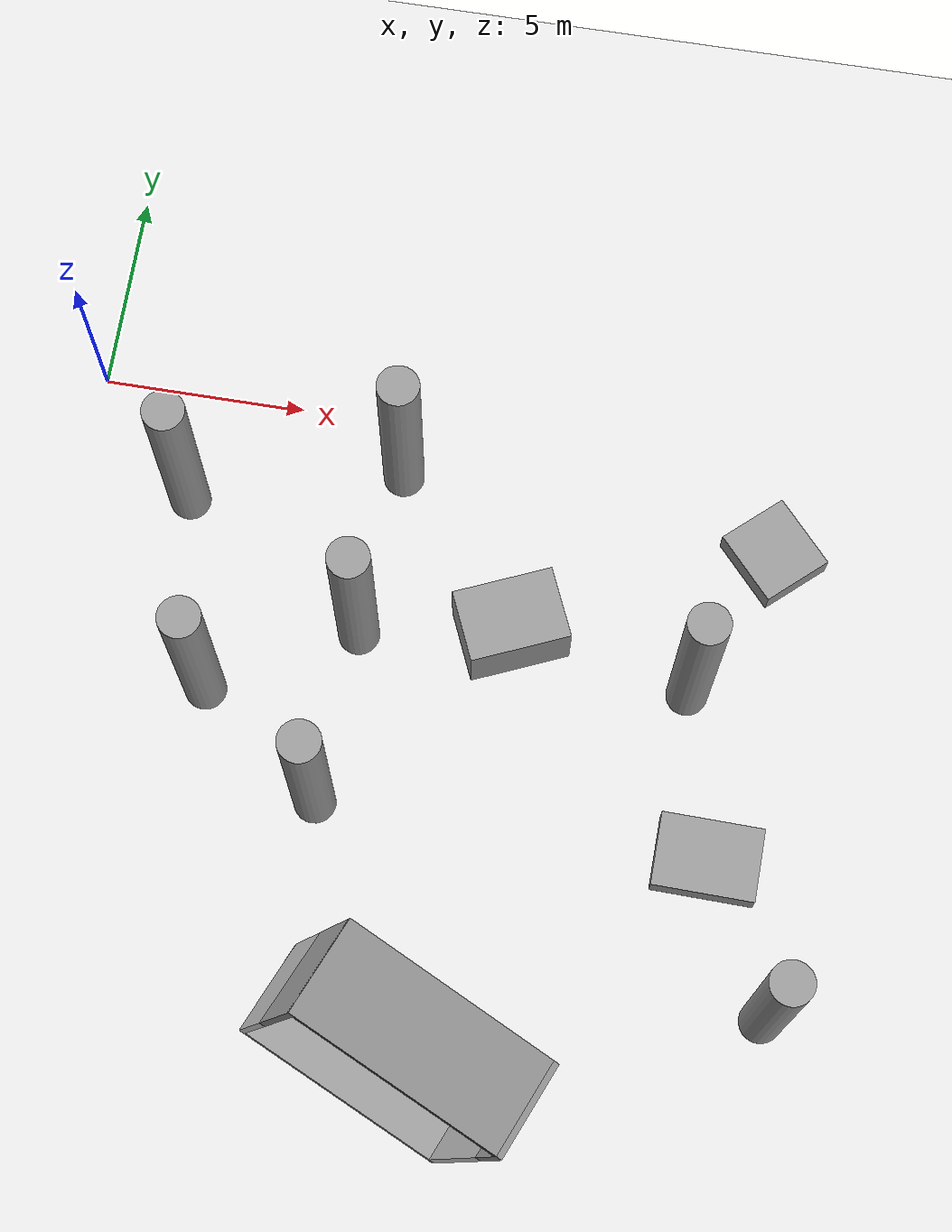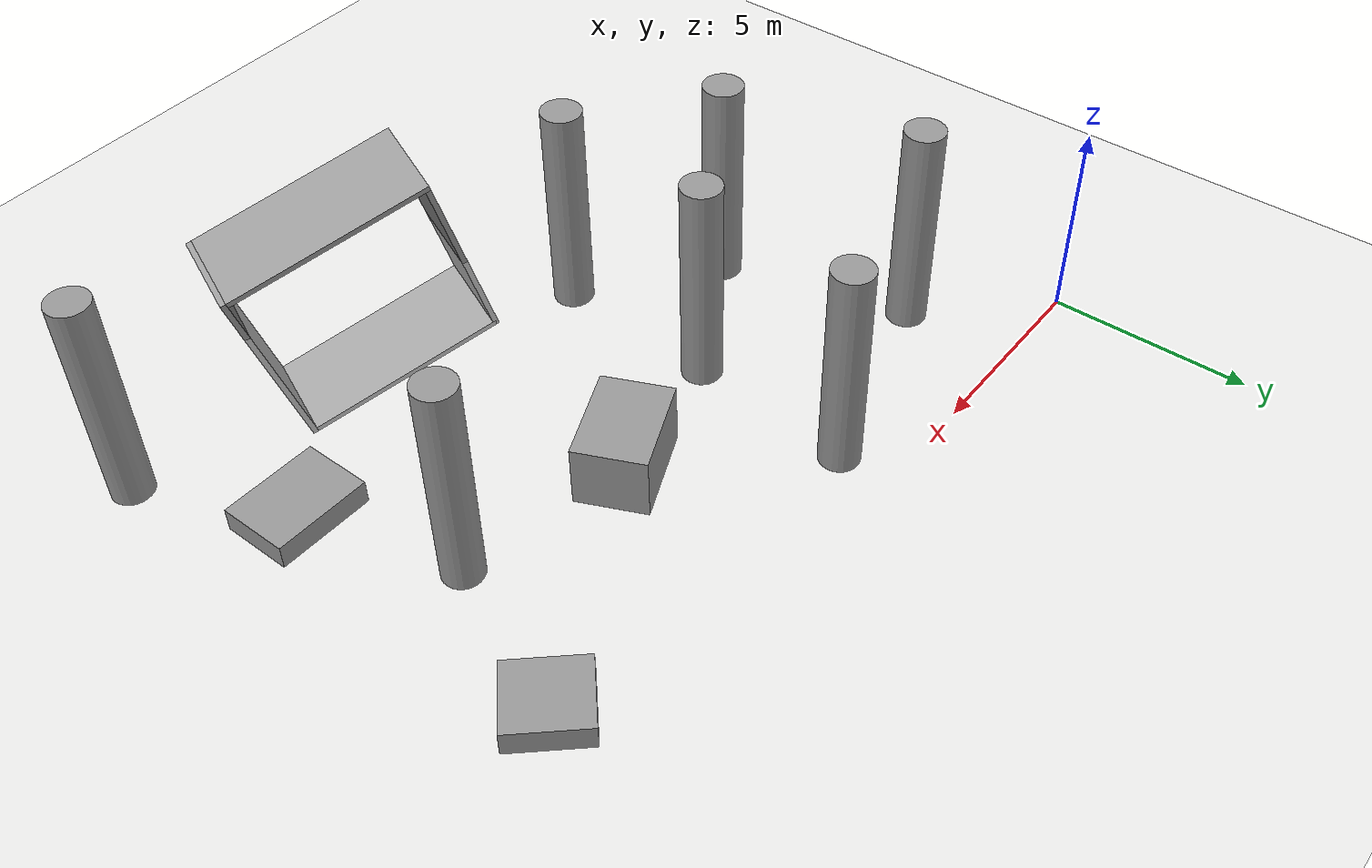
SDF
<sdf version="1.6">
 <world name="default">
  <model name="ground_plane">
   <static>1</static>
   <link name="link">
    <collision name="collision">
     <geometry><plane><normal>0 0 1</normal><size>100 100</size></plane></geometry>
     <surface><friction><ode><mu>100</mu><mu2>50</mu2></ode></friction></surface>
    </collision>
    <visual name="visual">
     <cast_shadows>0</cast_shadows>
     <geometry><plane><normal>0 0 1</normal><size>100 100</size></plane></geometry>
     <material>
      <script><uri>file://media/materials/scripts/gazebo.material</uri><name>Gazebo/Grey</name></script>
     </material>
    </visual>
   </link>
  </model>
  <model name="unit_cylinder_clone">
   <pose>2.682 -2.80486 2.75253 0 -0 0.001928</pose>
   <link name="link">
    <inertial>
     <mass>1</mass>
     <inertia><ixx>0.145833</ixx><ixy>0</ixy><ixz>0</ixz><iyy>0.145833</iyy><iyz>0</iyz><izz>0.125</izz></inertia>
    </inertial>
    <collision name="collision">
     <geometry><cylinder><radius>0.5</radius><length>5.50507</length></cylinder></geometry>
    </collision>
    <visual name="visual">
     <geometry><cylinder><radius>0.5</radius><length>5.50507</length></cylinder></geometry>
     <material>
      <script><name>Gazebo/Grey</name><uri>file://media/materials/scripts/gazebo.material</uri></script>
     </material>
    </visual>
   </link>
  </model>
  <model name="unit_cylinder_clone_1">
   <pose>7.38604 -5.59568 2.75253 0 -0 0.001783</pose>
   <link name="link">
    <inertial>
     <mass>1</mass>
     <inertia><ixx>0.145833</ixx><ixy>0</ixy><ixz>0</ixz><iyy>0.145833</iyy><iyz>0</iyz><izz>0.125</izz></inertia>
    </inertial>
    <collision name="collision">
     <geometry><cylinder><radius>0.5</radius><length>5.50507</length></cylinder></geometry>
    </collision>
    <visual name="visual">
     <geometry><cylinder><radius>0.5</radius><length>5.50507</length></cylinder></geometry>
     <material>
      <script><name>Gazebo/Grey</name><uri>file://media/materials/scripts/gazebo.material</uri></script>
     </material>
    </visual>
   </link>
  </model>
  <model name="unit_cylinder_clone_3">
   <pose>7.77998 -1.3796 2.75253 0 -0 0.002173</pose>
   <link name="link">
    <inertial>
     <mass>1</mass>
     <inertia><ixx>0.145833</ixx><ixy>0</ixy><ixz>0</ixz><iyy>0.145833</iyy><iyz>0</iyz><izz>0.125</izz></inertia>
    </inertial>
    <collision name="collision">
     <geometry><cylinder><radius>0.5</radius><length>5.50507</length></cylinder></geometry>
    </collision>
    <visual name="visual">
     <geometry><cylinder><radius>0.5</radius><length>5.50507</length></cylinder></geometry>
     <material>
      <script><name>Gazebo/Grey</name><uri>file://media/materials/scripts/gazebo.material</uri></script>
     </material>
    </visual>
   </link>
  </model>
  <model name="unit_cylinder_clone_4">
   <pose>3.9885 -7.5392 2.75253 0 -0 0.002246</pose>
   <link name="link">
    <inertial>
     <mass>1</mass>
     <inertia><ixx>0.145833</ixx><ixy>0</ixy><ixz>0</ixz><iyy>0.145833</iyy><iyz>0</iyz><izz>0.125</izz></inertia>
    </inertial>
    <collision name="collision">
     <geometry><cylinder><radius>0.5</radius><length>5.50507</length></cylinder></geometry>
    </collision>
    <visual name="visual">
     <geometry><cylinder><radius>0.5</radius><length>5.50507</length></cylinder></geometry>
     <material>
      <script><name>Gazebo/Grey</name><uri>file://media/materials/scripts/gazebo.material</uri></script>
     </material>
    </visual>
   </link>
  </model>
  <model name="unit_cylinder_clone_6">
   <pose>7.07562 -9.88009 2.75253 0 -0 0.001971</pose>
   <link name="link">
    <inertial>
     <mass>1</mass>
     <inertia><ixx>0.145833</ixx><ixy>0</ixy><ixz>0</ixz><iyy>0.145833</iyy><iyz>0</iyz><izz>0.125</izz></inertia>
    </inertial>
    <collision name="collision">
     <geometry><cylinder><radius>0.5</radius><length>5.50507</length></cylinder></geometry>
    </collision>
    <visual name="visual">
     <geometry><cylinder><radius>0.5</radius><length>5.50507</length></cylinder></geometry>
     <material>
      <script><name>Gazebo/Grey</name><uri>file://media/materials/scripts/gazebo.material</uri></script>
     </material>
    </visual>
   </link>
  </model>
  <model name="unit_cylinder_clone_12">
   <pose>15.4144 -5.85672 2.75253 0 -0 0.002175</pose>
   <link name="link">
    <inertial>
     <mass>1</mass>
     <inertia><ixx>0.145833</ixx><ixy>0</ixy><ixz>0</ixz><iyy>0.145833</iyy><iyz>0</iyz><izz>0.125</izz></inertia>
    </inertial>
    <collision name="collision">
     <geometry><cylinder><radius>0.5</radius><length>5.50507</length></cylinder></geometry>
    </collision>
    <visual name="visual">
     <geometry><cylinder><radius>0.5</radius><length>5.50507</length></cylinder></geometry>
     <material>
      <script><name>Gazebo/Grey</name><uri>file://media/materials/scripts/gazebo.material</uri></script>
     </material>
    </visual>
   </link>
  </model>
  <model name="unit_box_clone">
   <pose>11.0027 -5 0.788235 0 0 -1.15764</pose>
   <link name="link">
    <inertial>
     <mass>1</mass>
     <inertia>
      <ixx>0.166667</ixx>
      <ixy>0</ixy>
      <ixz>0</ixz>
      <iyy>0.166667</iyy>
      <iyz>0</iyz>
      <izz>0.166667</izz>
     </inertia>
    </inertial>
    <collision name="collision"><geometry><box><size>1.76997 2.44518 1.57647</size></box></geometry></collision>
    <visual name="visual">
     <geometry><box><size>1.76997 2.44518 1.57647</size></box></geometry>
     <material>
      <script><name>Gazebo/Grey</name><uri>file://media/materials/scripts/gazebo.material</uri></script>
     </material>
    </visual>
   </link>
  </model>
  <model name="unit_box_clone_0">
   <pose>17.0316 -2.04216 0.311636 0 -0 0.732674</pose>
   <link name="link">
    <inertial>
     <mass>1</mass>
     <inertia>
      <ixx>0.166667</ixx>
      <ixy>0</ixy>
      <ixz>0</ixz>
      <iyy>0.166667</iyy>
      <iyz>0</iyz>
      <izz>0.166667</izz>
     </inertia>
    </inertial>
    <collision name="collision"><geometry><box><size>1.76997 1.92154 0.623272</size></box></geometry></collision>
    <visual name="visual">
     <geometry><box><size>1.76997 1.92154 0.623272</size></box></geometry>
     <material>
      <script><name>Gazebo/Grey</name><uri>file://media/materials/scripts/gazebo.material</uri></script>
     </material>
    </visual>
   </link>
  </model>
  <model name="unit_box_clone_1">
   <pose>16.398 -9.83684 0.300237 0 1.4e-05 1.55078</pose>
   <link name="link">
    <inertial>
     <mass>1</mass>
     <inertia>
      <ixx>0.166667</ixx>
      <ixy>0</ixy>
      <ixz>0</ixz>
      <iyy>0.166667</iyy>
      <iyz>0</iyz>
      <izz>0.166667</izz>
     </inertia>
    </inertial>
    <collision name="collision"><geometry><box><size>1.76997 2.44518 0.600499</size></box></geometry></collision>
    <visual name="visual">
     <geometry><box><size>1.76997 2.44518 0.600499</size></box></geometry>
     <material>
      <script><name>Gazebo/Grey</name><uri>file://media/materials/scripts/gazebo.material</uri></script>
     </material>
    </visual>
   </link>
  </model>
  <model name="unit_cylinder_clone_7_clone_3">
   <pose>18.1074 -13.3673 2.75253 0 -0 0.001857</pose>
   <link name="link">
    <inertial>
     <mass>1</mass>
     <inertia><ixx>0.145833</ixx><ixy>0</ixy><ixz>0</ixz><iyy>0.145833</iyy><iyz>0</iyz><izz>0.125</izz></inertia>
    </inertial>
    <collision name="collision">
     <geometry><cylinder><radius>0.5</radius><length>5.50507</length></cylinder></geometry>
    </collision>
    <visual name="visual">
     <geometry><cylinder><radius>0.5</radius><length>5.50507</length></cylinder></geometry>
     <material>
      <script><name>Gazebo/Grey</name><uri>file://media/materials/scripts/gazebo.material</uri></script>
     </material>
    </visual>
   </link>
  </model>
  <model name="vRoom_clone_3_clone_clone_9_clone_clone_clone_0">
   <link name="Wall_0">
    <pose>-2.8 -0 -1e-06 -0 -0 -1.5708</pose>
    <velocity_decay><linear>0</linear><angular>0</angular></velocity_decay>
    <visual name="Wall_0_Visual">
     <pose>0 0 1.25 0 -0 0</pose>
     <geometry><box><size>5.75 0.15 2.5</size></box></geometry>
     <material>
      <script><uri>file://media/materials/scripts/gazebo.material</uri><name>Gazebo/Grey</name></script>
      <ambient>1 1 1 1</ambient>
     </material>
    </visual>
    <collision name="Wall_0_Collision">
     <pose>0 0 1.25 0 -0 0</pose>
     <geometry><box><size>5.75 0.15 2.5</size></box></geometry>
     <surface>
      <friction>
       <ode><mu>1</mu><mu2>1</mu2><fdir1>0 0 0</fdir1><slip1>0</slip1><slip2>0</slip2></ode>
       <torsional>
        <coefficient>1</coefficient>
        <patch_radius>0</patch_radius>
        <surface_radius>0</surface_radius>
        <use_patch_radius>1</use_patch_radius>
        <ode><slip>0</slip></ode>
       </torsional>
      </friction>
      <bounce><restitution_coefficient>0</restitution_coefficient><threshold>1e+06</threshold></bounce>
      <contact>
       <collide_without_contact>0</collide_without_contact>
       <collide_without_contact_bitmask>1</collide_without_contact_bitmask>
       <collide_bitmask>1</collide_bitmask>
       <ode>
        <soft_cfm>0</soft_cfm>
        <soft_erp>0.2</soft_erp>
        <kp>1e+13</kp>
        <kd>1</kd>
        <max_vel>0.01</max_vel>
        <min_depth>0</min_depth>
       </ode>
       <bullet>
        <split_impulse>1</split_impulse>
        <split_impulse_penetration_threshold>-0.01</split_impulse_penetration_threshold>
        <soft_cfm>0</soft_cfm>
        <soft_erp>0.2</soft_erp>
        <kp>1e+13</kp>
        <kd>1</kd>
       </bullet>
      </contact>
     </surface>
    </collision>
   </link>
   <link name="Wall_1">
    <pose>2e-06 -2.8 2e-06 0 -0 0</pose>
    <velocity_decay><linear>0</linear><angular>0</angular></velocity_decay>
    <visual name="Wall_1_Visual">
     <pose>0 0 1.25 0 -0 0</pose>
     <geometry><box><size>5.75 0.15 2.5</size></box></geometry>
     <material>
      <script><uri>file://media/materials/scripts/gazebo.material</uri><name>Gazebo/Grey</name></script>
      <ambient>1 1 1 1</ambient>
     </material>
    </visual>
    <collision name="Wall_1_Collision">
     <pose>0 0 1.25 0 -0 0</pose>
     <geometry><box><size>5.75 0.15 2.5</size></box></geometry>
     <surface>
      <friction>
       <ode><mu>1</mu><mu2>1</mu2><fdir1>0 0 0</fdir1><slip1>0</slip1><slip2>0</slip2></ode>
       <torsional>
        <coefficient>1</coefficient>
        <patch_radius>0</patch_radius>
        <surface_radius>0</surface_radius>
        <use_patch_radius>1</use_patch_radius>
        <ode><slip>0</slip></ode>
       </torsional>
      </friction>
      <bounce><restitution_coefficient>0</restitution_coefficient><threshold>1e+06</threshold></bounce>
      <contact>
       <collide_without_contact>0</collide_without_contact>
       <collide_without_contact_bitmask>1</collide_without_contact_bitmask>
       <collide_bitmask>1</collide_bitmask>
       <ode>
        <soft_cfm>0</soft_cfm>
        <soft_erp>0.2</soft_erp>
        <kp>1e+13</kp>
        <kd>1</kd>
        <max_vel>0.01</max_vel>
        <min_depth>0</min_depth>
       </ode>
       <bullet>
        <split_impulse>1</split_impulse>
        <split_impulse_penetration_threshold>-0.01</split_impulse_penetration_threshold>
        <soft_cfm>0</soft_cfm>
        <soft_erp>0.2</soft_erp>
        <kp>1e+13</kp>
        <kd>1</kd>
       </bullet>
      </contact>
     </surface>
    </collision>
   </link>
   <link name="Wall_2">
    <pose>2.8 0 1e-06 0 -0 1.5708</pose>
    <velocity_decay><linear>0</linear><angular>0</angular></velocity_decay>
    <visual name="Wall_2_Visual">
     <pose>0 0 1.25 0 -0 0</pose>
     <geometry><box><size>5.75 0.15 2.5</size></box></geometry>
     <material>
      <script><uri>file://media/materials/scripts/gazebo.material</uri><name>Gazebo/Grey</name></script>
      <ambient>1 1 1 1</ambient>
     </material>
    </visual>
    <collision name="Wall_2_Collision">
     <pose>0 0 1.25 0 -0 0</pose>
     <geometry><box><size>5.75 0.15 2.5</size></box></geometry>
     <surface>
      <friction>
       <ode><mu>1</mu><mu2>1</mu2><fdir1>0 0 0</fdir1><slip1>0</slip1><slip2>0</slip2></ode>
       <torsional>
        <coefficient>1</coefficient>
        <patch_radius>0</patch_radius>
        <surface_radius>0</surface_radius>
        <use_patch_radius>1</use_patch_radius>
        <ode><slip>0</slip></ode>
       </torsional>
      </friction>
      <bounce><restitution_coefficient>0</restitution_coefficient><threshold>1e+06</threshold></bounce>
      <contact>
       <collide_without_contact>0</collide_without_contact>
       <collide_without_contact_bitmask>1</collide_without_contact_bitmask>
       <collide_bitmask>1</collide_bitmask>
       <ode>
        <soft_cfm>0</soft_cfm>
        <soft_erp>0.2</soft_erp>
        <kp>1e+13</kp>
        <kd>1</kd>
        <max_vel>0.01</max_vel>
        <min_depth>0</min_depth>
       </ode>
       <bullet>
        <split_impulse>1</split_impulse>
        <split_impulse_penetration_threshold>-0.01</split_impulse_penetration_threshold>
        <soft_cfm>0</soft_cfm>
        <soft_erp>0.2</soft_erp>
        <kp>1e+13</kp>
        <kd>1</kd>
       </bullet>
      </contact>
     </surface>
    </collision>
   </link>
   <link name="Wall_3">
    <pose>-2e-06 2.8 -2e-06 0 -0 3.14159</pose>
    <velocity_decay><linear>0</linear><angular>0</angular></velocity_decay>
    <visual name="Wall_3_Visual">
     <pose>0 0 1.25 0 -0 0</pose>
     <geometry><box><size>5.75 0.15 2.5</size></box></geometry>
     <material>
      <script><uri>file://media/materials/scripts/gazebo.material</uri><name>Gazebo/Grey</name></script>
      <ambient>1 1 1 1</ambient>
     </material>
    </visual>
    <collision name="Wall_3_Collision">
     <pose>0 0 1.25 0 -0 0</pose>
     <geometry><box><size>5.75 0.15 2.5</size></box></geometry>
     <surface>
      <friction>
       <ode><mu>1</mu><mu2>1</mu2><fdir1>0 0 0</fdir1><slip1>0</slip1><slip2>0</slip2></ode>
       <torsional>
        <coefficient>1</coefficient>
        <patch_radius>0</patch_radius>
        <surface_radius>0</surface_radius>
        <use_patch_radius>1</use_patch_radius>
        <ode><slip>0</slip></ode>
       </torsional>
      </friction>
      <bounce><restitution_coefficient>0</restitution_coefficient><threshold>1e+06</threshold></bounce>
      <contact>
       <collide_without_contact>0</collide_without_contact>
       <collide_without_contact_bitmask>1</collide_without_contact_bitmask>
       <collide_bitmask>1</collide_bitmask>
       <ode>
        <soft_cfm>0</soft_cfm>
        <soft_erp>0.2</soft_erp>
        <kp>1e+13</kp>
        <kd>1</kd>
        <max_vel>0.01</max_vel>
        <min_depth>0</min_depth>
       </ode>
       <bullet>
        <split_impulse>1</split_impulse>
        <split_impulse_penetration_threshold>-0.01</split_impulse_penetration_threshold>
        <soft_cfm>0</soft_cfm>
        <soft_erp>0.2</soft_erp>
        <kp>1e+13</kp>
        <kd>1</kd>
       </bullet>
      </contact>
     </surface>
    </collision>
   </link>
   <static>1</static>
   <pose>10.3169 -14.0406 -0.670588 -1.2564 1.2786 3.05373</pose>
  </model>
 </world>
</sdf>
